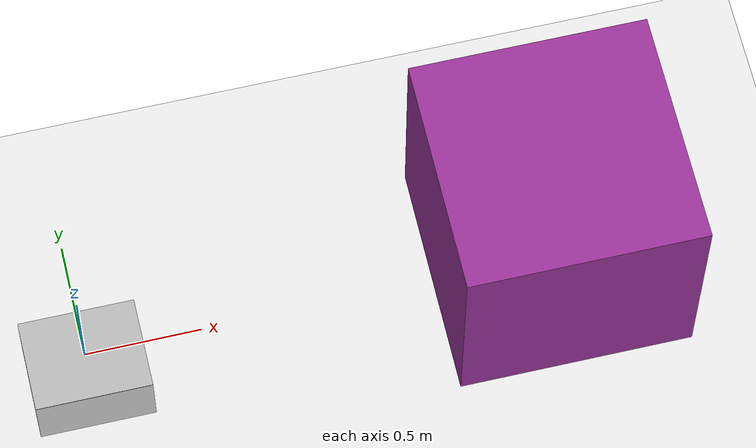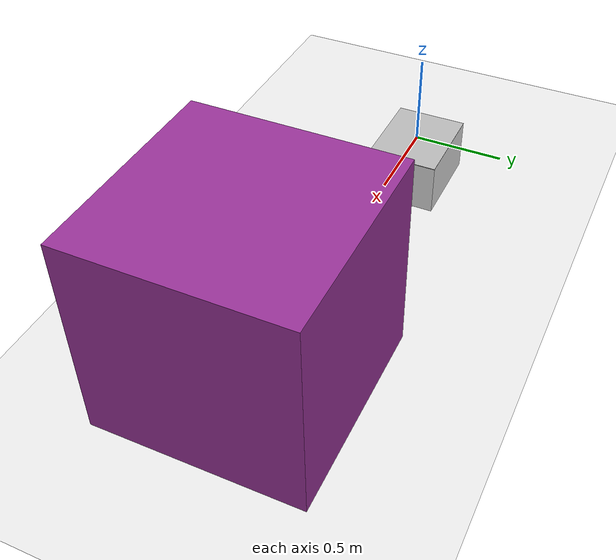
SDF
<?xml version="1.0"?>
<sdf version="1.7">
    <world name="default">
        <scene>
            <ambient>0.5 0.5 0.5 1</ambient>
        </scene>

        <physics name="1ms" type="ignored">
            <max_step_size>0.001</max_step_size>
            <real_time_factor>1.0</real_time_factor>
        </physics>
        <plugin
            filename="gz-sim-physics-system"
            name="gz::sim::systems::Physics">
        </plugin>

        <plugin
            filename="gz-sim-scene-broadcaster-system"
            name="gz::sim::systems::SceneBroadcaster">
        </plugin>

        <plugin
            filename="gz-sim-sensors-system"
            name="gz::sim::systems::Sensors">
            <render_engine>ogre2</render_engine>
        </plugin>

        <model name="ground_plane">
            <static>true</static>
            <link name="link">
                <collision name="collision">
                    <geometry>
                        <plane>
                            <normal>0 0 1</normal>
                            <size>100 100</size>
                        </plane>
                    </geometry>
                </collision>
                <visual name="visual">
                    <geometry>
                        <plane>
                            <normal>0 0 1</normal>
                            <size>100 100</size>
                        </plane>
                    </geometry>
                    <material>
                        <ambient>0.8 0.8 0.8 1</ambient>
                        <diffuse>0.8 0.8 0.8 1</diffuse>
                        <specular>0.8 0.8 0.8 1</specular>
                    </material>
                </visual>
            </link>
        </model>

        <!-- A simple robot with an IMU sensor -->
        <model name="robot_with_imu">
            <link name="link">
                <inertial>
                    <mass>2</mass>
                    <inertia>
                        <ixx>0.041666667</ixx>
                        <ixy>0</ixy>
                        <ixz>0</ixz>
                        <iyy>0.056666667</iyy>
                        <iyz>0</iyz>
                        <izz>0.068333333</izz>
                    </inertia>
                </inertial>
                <collision name="collision">
                    <geometry>
                        <box>
                            <size>0.5 0.4 0.3</size>
                        </box>
                    </geometry>
                    <surface>
                        <friction>
                            <ode>
                                <mu>1.0</mu>
                                <mu2>1.0</mu2>
                            </ode>
                        </friction>
                        <contact>
                            <ode>
                                <kp>10000000.0</kp>
                                <kd>1.0</kd>
                                <min_depth>0.001</min_depth>
                                <max_vel>0.1</max_vel>
                            </ode>
                        </contact>
                    </surface>
                </collision>
                <visual name="visual">
                    <pose>0 0 -0.15 0 0 0</pose>
                    <geometry>
                        <box>
                            <size>0.5 0.4 0.3</size>
                        </box>
                    </geometry>
                </visual>

                <sensor name="camera" type="camera">
                    <camera>
                        <horizontal_fov>1.047</horizontal_fov>
                        <image>
                            <width>320</width>
                            <height>240</height>
                        </image>
                        <clip>
                            <near>0.1</near>
                            <far>100</far>
                        </clip>
                    </camera>
                    <always_on>1</always_on>
                    <update_rate>15</update_rate>
                    <visualize>true</visualize>
                    <topic>/vehicle/camera</topic>
                </sensor>
            </link>
        </model>

        <model name="simple_box">
            <pose>2 0 0.5 0 0 0</pose> <!-- Position and orientation (X Y Z roll pitch yaw) -->

            <link name="box_link">
                <pose>0 0 0 0 0 0</pose>

                <!-- Box geometry -->
                <collision name="box_collision">
                    <geometry>
                        <box>
                            <size>1 1 1</size> <!-- Size of the box (X Y Z) -->
                        </box>
                    </geometry>
                </collision>

                <visual name="box_visual">
                    <geometry>
                        <box>
                            <size>1 1 1</size> <!-- Size of the box (X Y Z) -->
                        </box>
                    </geometry>
                    <material>
                        <ambient>0.6 0.2 0.6 1.0</ambient> <!-- Color of the box -->
                        <diffuse>0.6 0.2 0.6 1.0</diffuse>
                    </material>
                </visual>
            </link>
        </model>

    </world>
</sdf>
